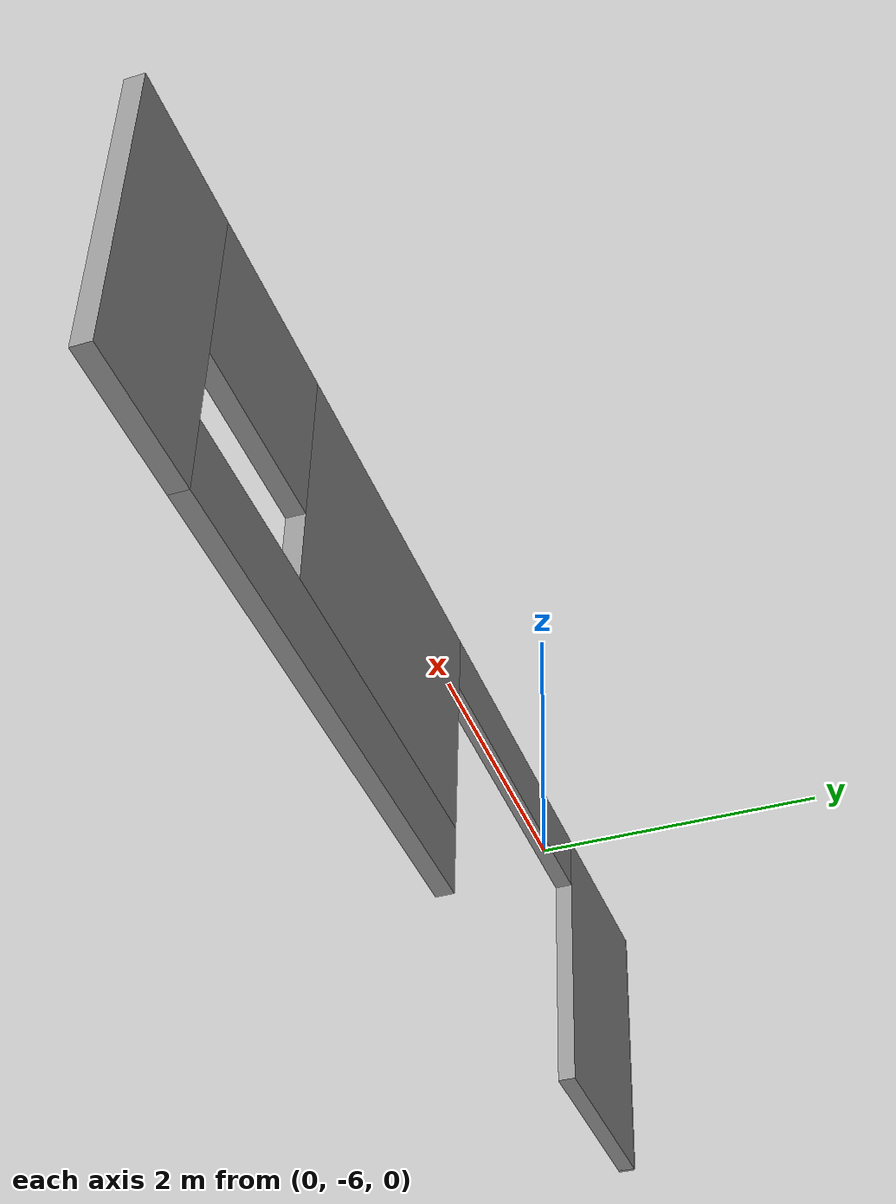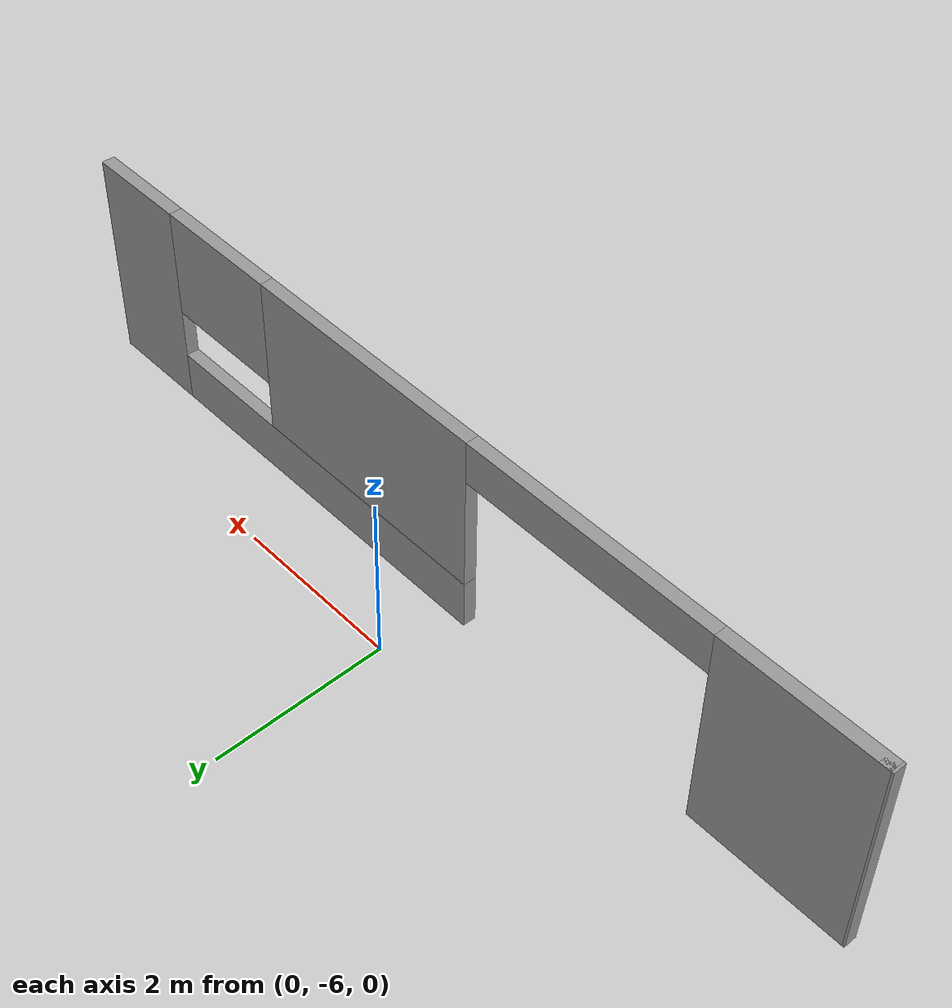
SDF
<?xml version='1.0'?>
<sdf version='1.6'>
  <model name='varying_doors3'>
    <pose frame=''>0.100084 -6.89082 0 0 -0 0</pose>
    <link name='Wall_7'>
      <pose frame=''>0.01315 0 0 0 -0 3.14159</pose>
      <visual name='Wall_7_Visual_0'>
        <pose frame=''>-4.65399 0 1.25 0 -0 0</pose>
        <geometry>
          <box>
            <size>1.19202 0.15 2.5</size>
          </box>
        </geometry>
        <material>
          <script>
            <uri>file://media/materials/scripts/gazebo.material</uri>
            <name>Gazebo/Grey</name>
          </script>
          <ambient>1 1 1 1</ambient>
        </material>
      </visual>
      <collision name='Wall_7_Collision_0'>
        <geometry>
          <box>
            <size>1.19202 0.15 2.5</size>
          </box>
        </geometry>
        <pose frame=''>-4.65399 0 1.25 0 -0 0</pose>
      </collision>
      <visual name='Wall_7_Visual_1'>
        <pose frame=''>4.33793 0 1.25 0 -0 0</pose>
        <geometry>
          <box>
            <size>1.82415 0.15 2.5</size>
          </box>
        </geometry>
        <material>
          <script>
            <uri>file://media/materials/scripts/gazebo.material</uri>
            <name>Gazebo/Grey</name>
          </script>
          <ambient>1 1 1 1</ambient>
        </material>
      </visual>
      <collision name='Wall_7_Collision_1'>
        <geometry>
          <box>
            <size>1.82415 0.15 2.5</size>
          </box>
        </geometry>
        <pose frame=''>4.33793 0 1.25 0 -0 0</pose>
      </collision>
      <visual name='Wall_7_Visual_2'>
        <pose frame=''>-1.81606 0 0.3 0 -0 0</pose>
        <geometry>
          <box>
            <size>4.48383 0.15 0.6</size>
          </box>
        </geometry>
        <material>
          <script>
            <uri>file://media/materials/scripts/gazebo.material</uri>
            <name>Gazebo/Grey</name>
          </script>
          <ambient>1 1 1 1</ambient>
        </material>
      </visual>
      <collision name='Wall_7_Collision_2'>
        <geometry>
          <box>
            <size>4.48383 0.15 0.6</size>
          </box>
        </geometry>
        <pose frame=''>-1.81606 0 0.3 0 -0 0</pose>
      </collision>
      <visual name='Wall_7_Visual_3'>
        <pose frame=''>-1.06606 0 1.55 0 -0 0</pose>
        <geometry>
          <box>
            <size>2.98383 0.15 1.9</size>
          </box>
        </geometry>
        <material>
          <script>
            <uri>file://media/materials/scripts/gazebo.material</uri>
            <name>Gazebo/Grey</name>
          </script>
          <ambient>1 1 1 1</ambient>
        </material>
      </visual>
      <collision name='Wall_7_Collision_3'>
        <geometry>
          <box>
            <size>2.98383 0.15 1.9</size>
          </box>
        </geometry>
        <pose frame=''>-1.06606 0 1.55 0 -0 0</pose>
      </collision>
      <visual name='Wall_7_Visual_4'>
        <pose frame=''>-3.30798 0 1.85 0 -0 0</pose>
        <geometry>
          <box>
            <size>1.5 0.15 1.3</size>
          </box>
        </geometry>
        <material>
          <script>
            <uri>file://media/materials/scripts/gazebo.material</uri>
            <name>Gazebo/Grey</name>
          </script>
          <ambient>1 1 1 1</ambient>
        </material>
      </visual>
      <collision name='Wall_7_Collision_4'>
        <geometry>
          <box>
            <size>1.5 0.15 1.3</size>
          </box>
        </geometry>
        <pose frame=''>-3.30798 0 1.85 0 -0 0</pose>
      </collision>
      <visual name='Wall_7_Visual_5'>
        <pose frame=''>1.92585 0 2.25 0 -0 0</pose>
        <geometry>
          <box>
            <size>3 0.15 0.5</size>
          </box>
        </geometry>
        <material>
          <script>
            <uri>file://media/materials/scripts/gazebo.material</uri>
            <name>Gazebo/Grey</name>
          </script>
          <ambient>1 1 1 1</ambient>
        </material>
      </visual>
      <collision name='Wall_7_Collision_5'>
        <geometry>
          <box>
            <size>3 0.15 0.5</size>
          </box>
        </geometry>
        <pose frame=''>1.92585 0 2.25 0 -0 0</pose>
      </collision>
    </link>
    <link name='Wall_8'>
      <collision name='Wall_8_Collision'>
        <geometry>
          <box>
            <size>0.15 0.15 2.5</size>
          </box>
        </geometry>
        <pose frame=''>0 0 1.25 0 -0 0</pose>
      </collision>
      <visual name='Wall_8_Visual'>
        <pose frame=''>0 0 1.25 0 -0 0</pose>
        <geometry>
          <box>
            <size>0.15 0.15 2.5</size>
          </box>
        </geometry>
        <material>
          <script>
            <uri>file://media/materials/scripts/gazebo.material</uri>
            <name>Gazebo/Grey</name>
          </script>
          <ambient>1 1 1 1</ambient>
        </material>
      </visual>
      <pose frame=''>-5.18815 0 0 0 -0 0</pose>
    </link>
    <static>1</static>
  </model>
</sdf>
